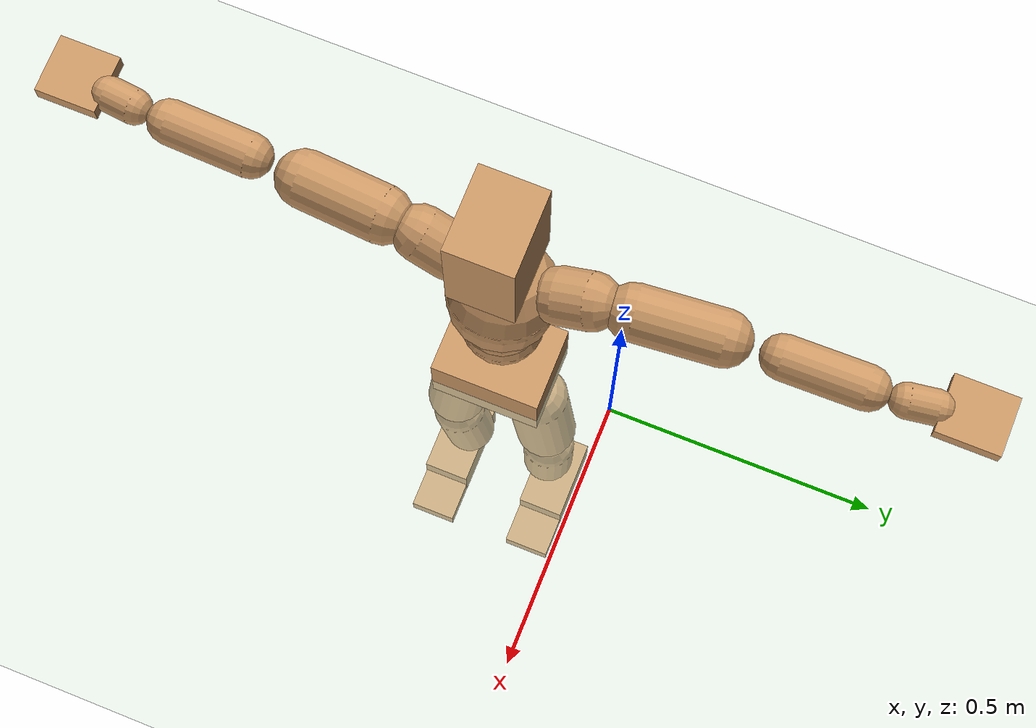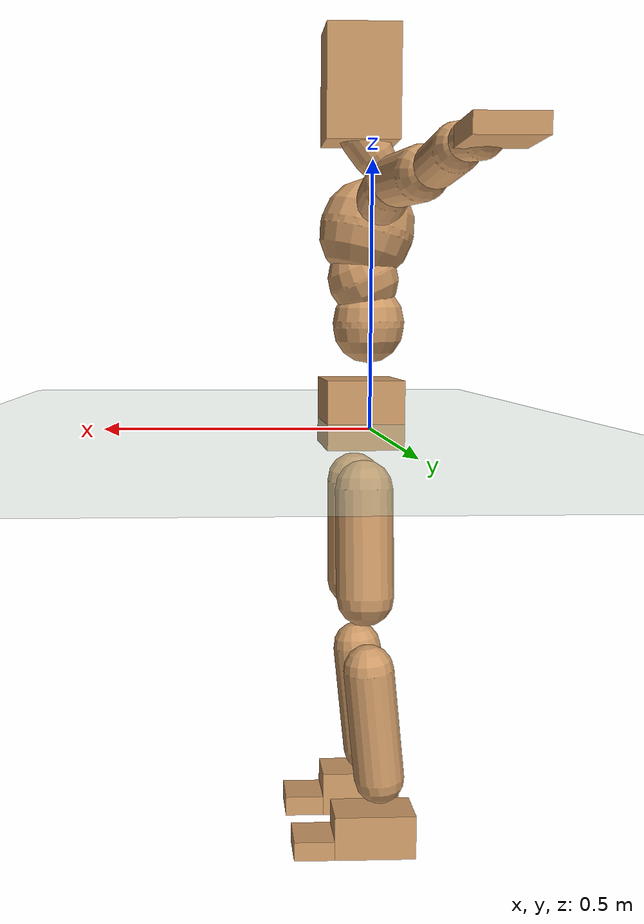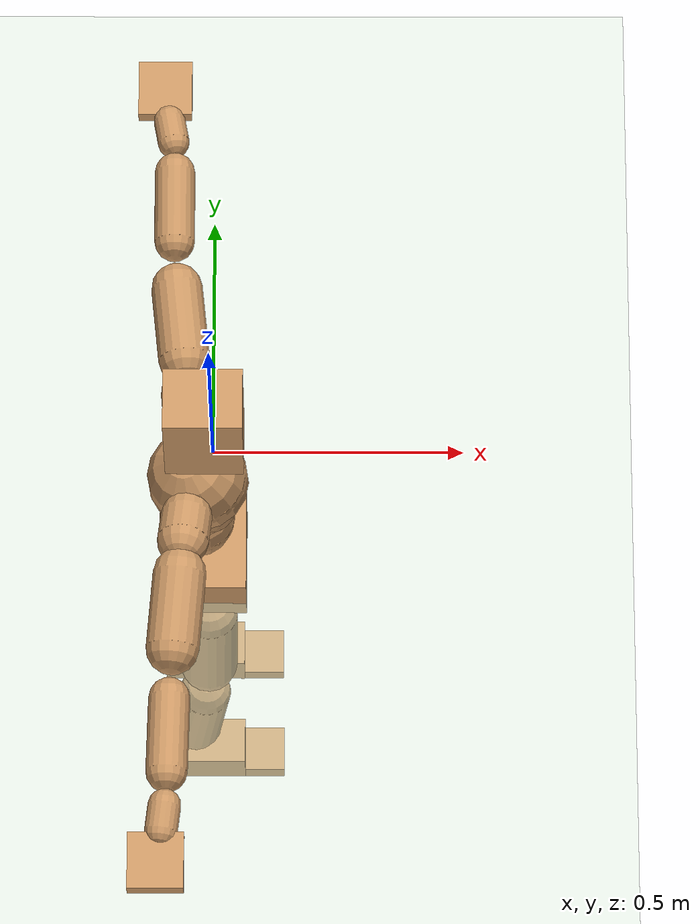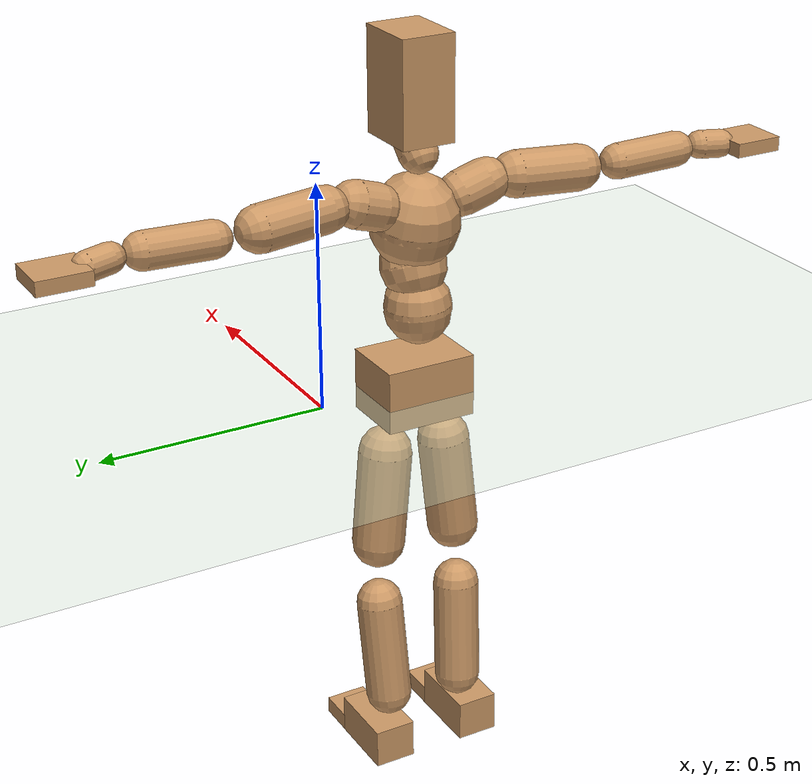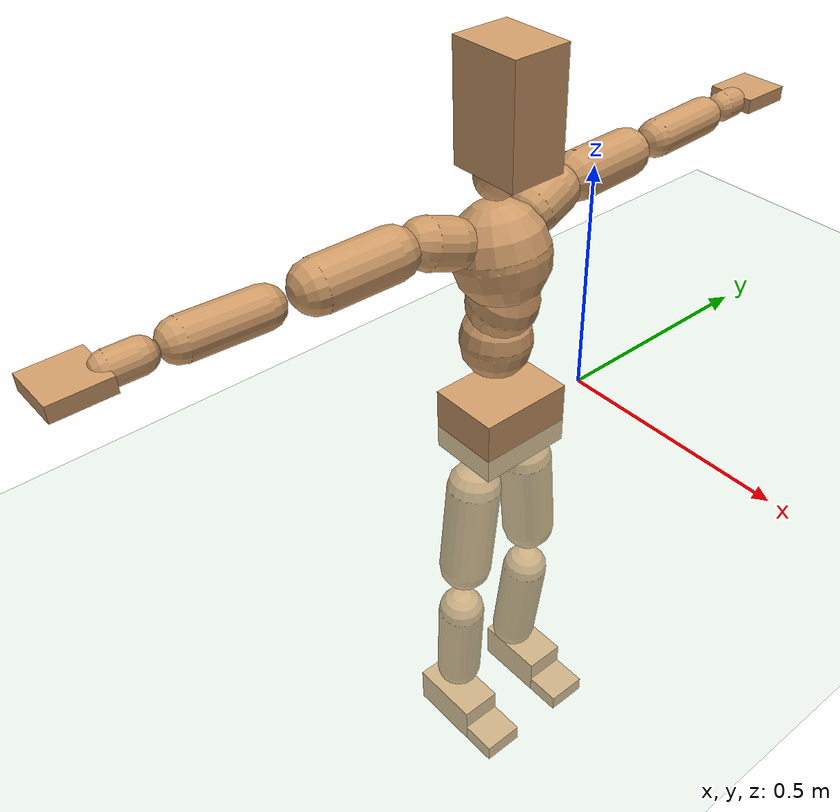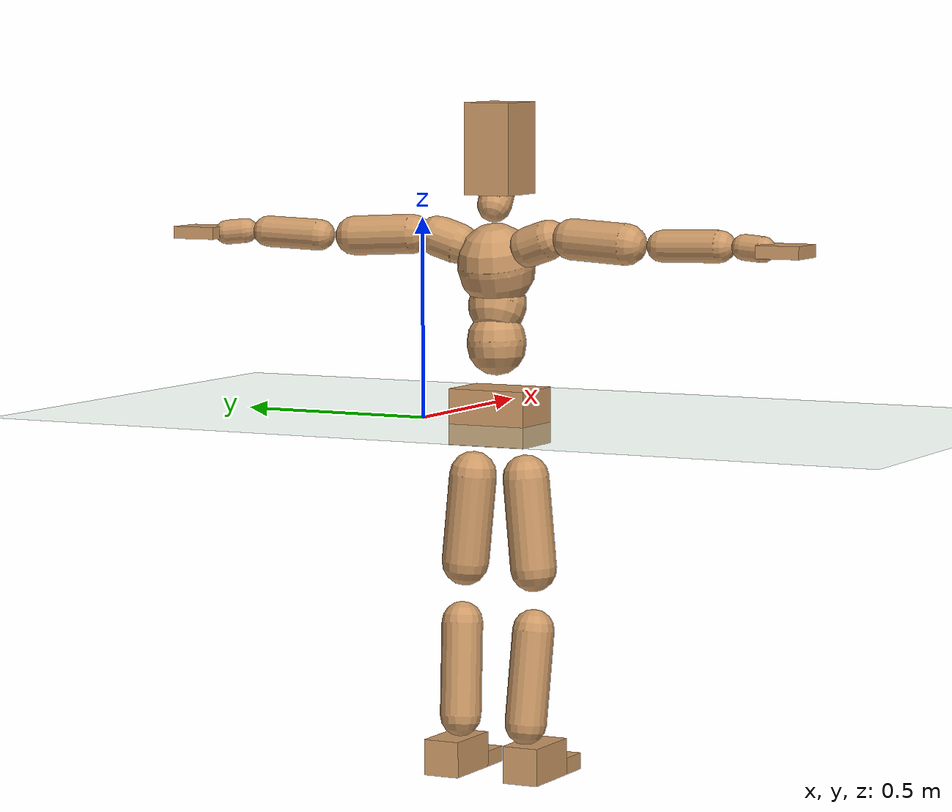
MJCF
<mujoco model="humanoid">
  <compiler coordinate="local" />
  <default>
    <joint damping="0.0" armature="0.01" stiffness="0.0" limited="true" />
    <geom conaffinity="1" condim="3" contype="7" margin="0.001" rgba="0.8 0.6 .4 1" />
  </default>
  <asset>
    <texture type="skybox" builtin="gradient" rgb1=".4 .5 .6" rgb2="0 0 0" width="100" height="100" />
    <texture builtin="flat" height="1278" mark="cross" markrgb="1 1 1" name="texgeom" random="0.01" rgb1="0.8 0.6 0.4" rgb2="0.8 0.6 0.4" type="cube" width="127" />
    <texture builtin="checker" height="100" name="texplane" rgb1="0 0 0" rgb2="0.8 0.8 0.8" type="2d" width="100" />
    <material name="MatPlane" reflectance="0.5" shininess="1" specular="1" texrepeat="60 60" texture="texplane" />
    <material name="geom" texture="texgeom" texuniform="true" />
  </asset>
  <worldbody>
    <light cutoff="100" diffuse="1 1 1" dir="-0 0 -1.3" directional="true" exponent="1" pos="0 0 1.3" specular=".1 .1 .1" />
    <geom conaffinity="1" condim="3" name="floor" pos="0 0 0" rgba="0.8 0.9 0.8 1" size="100 100 .2" type="plane" material="MatPlane" />
    <body name="Pelvis" pos="-0.0021 -0.2184 0.026">
      <freejoint name="Pelvis" />
      <geom type="box" pos="-0.0067 0.0001 -0.0108" size="0.0775 0.1028 0.0697" quat="1.0000 0.0000 0.0000 0.0000" density="1000" />
      <body name="L_Hip" pos="-0.0071 0.0667 -0.088">
        <joint name="L_Hip_x" type="hinge" pos="0 0 0" axis="1 0 0" stiffness="800" damping="80" armature="0.02" range="-180.0000 180.0000" />
        <joint name="L_Hip_y" type="hinge" pos="0 0 0" axis="0 1 0" stiffness="800" damping="80" armature="0.02" range="-180.0000 180.0000" />
        <joint name="L_Hip_z" type="hinge" pos="0 0 0" axis="0 0 1" stiffness="800" damping="80" armature="0.02" range="-180.0000 180.0000" />
        <geom type="capsule" contype="1" conaffinity="1" density="2040.816327" fromto="-0.0005 0.0069 -0.0734 -0.0018 0.0277 -0.2937" size="0.059" />
        <body name="L_Knee" pos="-0.0023 0.0346 -0.3672">
          <joint name="L_Knee_x" type="hinge" pos="0 0 0" axis="1 0 0" stiffness="800" damping="80" armature="0.02" range="-180.0000 180.0000" />
          <joint name="L_Knee_y" type="hinge" pos="0 0 0" axis="0 1 0" stiffness="800" damping="80" armature="0.02" range="-180.0000 180.0000" />
          <joint name="L_Knee_z" type="hinge" pos="0 0 0" axis="0 0 1" stiffness="800" damping="80" armature="0.02" range="-180.0000 180.0000" />
          <geom type="capsule" contype="1" conaffinity="1" density="1234.567901" fromto="-0.0083 -0.0026 -0.0774 -0.0331 -0.0105 -0.3095" size="0.052" />
          <body name="L_Ankle" pos="-0.0414 -0.0131 -0.3869">
            <joint name="L_Ankle_x" type="hinge" pos="0 0 0" axis="1 0 0" stiffness="800" damping="80" armature="0.02" range="-180.0000 180.0000" />
            <joint name="L_Ankle_y" type="hinge" pos="0 0 0" axis="0 1 0" stiffness="800" damping="80" armature="0.02" range="-180.0000 180.0000" />
            <joint name="L_Ankle_z" type="hinge" pos="0 0 0" axis="0 0 1" stiffness="800" damping="80" armature="0.02" range="-180.0000 180.0000" />
            <geom type="box" pos="0.0240 0.0231 -0.0234" size="0.0827 0.047 0.045" quat="1.0000 0.0000 0.0000 0.0000" density="1000" />
            <body name="L_Toe" pos="0.1165 0.0259 -0.0544">
              <joint name="L_Toe_x" type="hinge" pos="0 0 0" axis="1 0 0" stiffness="500" damping="50" armature="0.02" range="-180.0000 180.0000" />
              <joint name="L_Toe_y" type="hinge" pos="0 0 0" axis="0 1 0" stiffness="500" damping="50" armature="0.02" range="-180.0000 180.0000" />
              <joint name="L_Toe_z" type="hinge" pos="0 0 0" axis="0 0 1" stiffness="500" damping="50" armature="0.02" range="-180.0000 180.0000" />
              <geom type="box" pos="0.0243 -0.0028 0.0056" size="0.0482 0.0466 0.0196" quat="1.0000 0.0000 0.0000 0.0000" density="1000" />
            </body>
          </body>
        </body>
      </body>
      <body name="R_Hip" pos="-0.0049 -0.0649 -0.0871">
        <joint name="R_Hip_x" type="hinge" pos="0 0 0" axis="1 0 0" stiffness="800" damping="80" armature="0.02" range="-180.0000 180.0000" />
        <joint name="R_Hip_y" type="hinge" pos="0 0 0" axis="0 1 0" stiffness="800" damping="80" armature="0.02" range="-180.0000 180.0000" />
        <joint name="R_Hip_z" type="hinge" pos="0 0 0" axis="0 0 1" stiffness="800" damping="80" armature="0.02" range="-180.0000 180.0000" />
        <geom type="capsule" contype="1" conaffinity="1" density="2040.816327" fromto="-0.0013 -0.0076 -0.0748 -0.0052 -0.0306 -0.2992" size="0.058" />
        <body name="R_Knee" pos="-0.0065 -0.0382 -0.374">
          <joint name="R_Knee_x" type="hinge" pos="0 0 0" axis="1 0 0" stiffness="800" damping="80" armature="0.02" range="-180.0000 180.0000" />
          <joint name="R_Knee_y" type="hinge" pos="0 0 0" axis="0 1 0" stiffness="800" damping="80" armature="0.02" range="-180.0000 180.0000" />
          <joint name="R_Knee_z" type="hinge" pos="0 0 0" axis="0 0 1" stiffness="800" damping="80" armature="0.02" range="-180.0000 180.0000" />
          <geom type="capsule" contype="1" conaffinity="1" density="1234.567901" fromto="-0.0080 0.0031 -0.0774 -0.0319 0.0122 -0.3097" size="0.0522" />
          <body name="R_Ankle" pos="-0.0398 0.0153 -0.3871">
            <joint name="R_Ankle_x" type="hinge" pos="0 0 0" axis="1 0 0" stiffness="800" damping="80" armature="0.02" range="-180.0000 180.0000" />
            <joint name="R_Ankle_y" type="hinge" pos="0 0 0" axis="0 1 0" stiffness="800" damping="80" armature="0.02" range="-180.0000 180.0000" />
            <joint name="R_Ankle_z" type="hinge" pos="0 0 0" axis="0 0 1" stiffness="800" damping="80" armature="0.02" range="-180.0000 180.0000" />
            <geom type="box" pos="0.0253 -0.0195 -0.0171" size="0.0842 0.047 0.0465" quat="1.0000 0.0000 0.0000 0.0000" density="1000" />
            <body name="R_Toe" pos="0.1202 -0.0234 -0.0471">
              <joint name="R_Toe_x" type="hinge" pos="0 0 0" axis="1 0 0" stiffness="500" damping="50" armature="0.02" range="-180.0000 180.0000" />
              <joint name="R_Toe_y" type="hinge" pos="0 0 0" axis="0 1 0" stiffness="500" damping="50" armature="0.02" range="-180.0000 180.0000" />
              <joint name="R_Toe_z" type="hinge" pos="0 0 0" axis="0 0 1" stiffness="500" damping="50" armature="0.02" range="-180.0000 180.0000" />
              <geom type="box" pos="0.0228 0.0039 0.0044" size="0.0484 0.0466 0.0209" quat="1.0000 0.0000 0.0000 0.0000" density="1000" />
            </body>
          </body>
        </body>
      </body>
      <body name="Torso" pos="-0.0245 -0.0025 0.105">
        <joint name="Torso_x" type="hinge" pos="0 0 0" axis="1 0 0" stiffness="1000" damping="100" armature="0.02" range="-180.0000 180.0000" />
        <joint name="Torso_y" type="hinge" pos="0 0 0" axis="0 1 0" stiffness="1000" damping="100" armature="0.02" range="-180.0000 180.0000" />
        <joint name="Torso_z" type="hinge" pos="0 0 0" axis="0 0 1" stiffness="1000" damping="100" armature="0.02" range="-180.0000 180.0000" />
        <geom type="capsule" contype="1" conaffinity="1" density="2040.816327" fromto="0.0008 0.0025 0.0598 0.0010 0.0030 0.0731" size="0.0734" />
        <body name="Spine" pos="0.0017 0.0055 0.1328">
          <joint name="Spine_x" type="hinge" pos="0 0 0" axis="1 0 0" stiffness="1000" damping="100" armature="0.02" range="-180.0000 180.0000" />
          <joint name="Spine_y" type="hinge" pos="0 0 0" axis="0 1 0" stiffness="1000" damping="100" armature="0.02" range="-180.0000 180.0000" />
          <joint name="Spine_z" type="hinge" pos="0 0 0" axis="0 0 1" stiffness="1000" damping="100" armature="0.02" range="-180.0000 180.0000" />
          <geom type="capsule" contype="1" conaffinity="1" density="2040.816327" fromto="0.0104 0.0007 0.0232 0.0127 0.0009 0.0284" size="0.0723" />
          <body name="Chest" pos="0.0231 0.0016 0.0516">
            <joint name="Chest_x" type="hinge" pos="0 0 0" axis="1 0 0" stiffness="1000" damping="100" armature="0.02" range="-180.0000 180.0000" />
            <joint name="Chest_y" type="hinge" pos="0 0 0" axis="0 1 0" stiffness="1000" damping="100" armature="0.02" range="-180.0000 180.0000" />
            <joint name="Chest_z" type="hinge" pos="0 0 0" axis="0 0 1" stiffness="1000" damping="100" armature="0.02" range="-180.0000 180.0000" />
            <geom type="capsule" contype="1" conaffinity="1" density="2040.816327" fromto="-0.0166 -0.0010 0.0666 -0.0203 -0.0012 0.0814" size="0.0967" />
            <body name="Neck" pos="-0.0415 -0.0034 0.2093">
              <joint name="Neck_x" type="hinge" pos="0 0 0" axis="1 0 0" stiffness="500" damping="50" armature="0.02" range="-180.0000 180.0000" />
              <joint name="Neck_y" type="hinge" pos="0 0 0" axis="0 1 0" stiffness="500" damping="50" armature="0.02" range="-180.0000 180.0000" />
              <joint name="Neck_z" type="hinge" pos="0 0 0" axis="0 0 1" stiffness="500" damping="50" armature="0.02" range="-180.0000 180.0000" />
              <geom type="capsule" contype="1" conaffinity="1" density="1000" fromto="0.0100 0.0011 0.0130 0.0401 0.0044 0.0519" size="0.0427" />
              <body name="Head" pos="0.0501 0.0055 0.0649">
                <joint name="Head_x" type="hinge" pos="0 0 0" axis="1 0 0" stiffness="500" damping="50" armature="0.02" range="-180.0000 180.0000" />
                <joint name="Head_y" type="hinge" pos="0 0 0" axis="0 1 0" stiffness="500" damping="50" armature="0.02" range="-180.0000 180.0000" />
                <joint name="Head_z" type="hinge" pos="0 0 0" axis="0 0 1" stiffness="500" damping="50" armature="0.02" range="-180.0000 180.0000" />
                <geom type="box" pos="-0.0110 -0.0042 0.0863" size="0.0746 0.0595 0.1133" quat="1.0000 0.0000 0.0000 0.0000" density="1000" />

              </body>
            </body>
            <body name="L_Thorax" pos="-0.0325 0.0773 0.1187">
              <joint name="L_Thorax_x" type="hinge" pos="0 0 0" axis="1 0 0" stiffness="500" damping="50" armature="0.02" range="-180.0000 180.0000" />
              <joint name="L_Thorax_y" type="hinge" pos="0 0 0" axis="0 1 0" stiffness="500" damping="50" armature="0.02" range="-180.0000 180.0000" />
              <joint name="L_Thorax_z" type="hinge" pos="0 0 0" axis="0 0 1" stiffness="500" damping="50" armature="0.02" range="-180.0000 180.0000" />
              <geom type="capsule" contype="1" conaffinity="1" density="1000" fromto="-0.0016 0.0181 0.0060 -0.0066 0.0724 0.0240" size="0.0506" />
              <body name="L_Shoulder" pos="-0.0082 0.0905 0.0299">
                <joint name="L_Shoulder_x" type="hinge" pos="0 0 0" axis="1 0 0" stiffness="500" damping="50" armature="0.02" range="-720.0000 720.0000" />
                <joint name="L_Shoulder_y" type="hinge" pos="0 0 0" axis="0 1 0" stiffness="500" damping="50" armature="0.02" range="-720.0000 720.0000" />
                <joint name="L_Shoulder_z" type="hinge" pos="0 0 0" axis="0 0 1" stiffness="500" damping="50" armature="0.02" range="-720.0000 720.0000" />
                <geom type="capsule" contype="1" conaffinity="1" density="1000" fromto="-0.0052 0.0507 -0.0024 -0.0207 0.2027 -0.0098" size="0.0497" />
                <body name="L_Elbow" pos="-0.0259 0.2534 -0.0122">
                  <joint name="L_Elbow_x" type="hinge" pos="0 0 0" axis="1 0 0" stiffness="500" damping="50" armature="0.02" range="-720.0000 720.0000" />
                  <joint name="L_Elbow_y" type="hinge" pos="0 0 0" axis="0 1 0" stiffness="500" damping="50" armature="0.02" range="-720.0000 720.0000" />
                  <joint name="L_Elbow_z" type="hinge" pos="0 0 0" axis="0 0 1" stiffness="500" damping="50" armature="0.02" range="-720.0000 720.0000" />
                  <geom type="capsule" contype="1" conaffinity="1" density="1000" fromto="-0.0003 0.0486 0.0017 -0.0012 0.1944 0.0067" size="0.0392" />
                  <body name="L_Wrist" pos="-0.0015 0.243 0.0084">
                    <joint name="L_Wrist_x" type="hinge" pos="0 0 0" axis="1 0 0" stiffness="300" damping="30" armature="0.02" range="-180.0000 180.0000" />
                    <joint name="L_Wrist_y" type="hinge" pos="0 0 0" axis="0 1 0" stiffness="300" damping="30" armature="0.02" range="-180.0000 180.0000" />
                    <joint name="L_Wrist_z" type="hinge" pos="0 0 0" axis="0 0 1" stiffness="300" damping="30" armature="0.02" range="-180.0000 180.0000" />
                    <geom type="capsule" contype="1" conaffinity="1" density="1000" fromto="-0.0029 0.0163 -0.0016 -0.0116 0.0654 -0.0064" size="0.0309" />
                    <body name="L_Hand" pos="-0.0145 0.0817 -0.008">
                      <joint name="L_Hand_x" type="hinge" pos="0 0 0" axis="1 0 0" stiffness="300" damping="30" armature="0.02" range="-180.0000 180.0000" />
                      <joint name="L_Hand_y" type="hinge" pos="0 0 0" axis="0 1 0" stiffness="300" damping="30" armature="0.02" range="-180.0000 180.0000" />
                      <joint name="L_Hand_z" type="hinge" pos="0 0 0" axis="0 0 1" stiffness="300" damping="30" armature="0.02" range="-180.0000 180.0000" />
                      <geom type="box" pos="-0.0056 0.0480 0.0010" size="0.0523 0.0569 0.0154" quat="1.0000 0.0000 0.0000 0.0000" density="1000" />
                    </body>
                  </body>
                </body>
              </body>
            </body>
            <body name="R_Thorax" pos="-0.037 -0.0805 0.1158">
              <joint name="R_Thorax_x" type="hinge" pos="0 0 0" axis="1 0 0" stiffness="500" damping="50" armature="0.02" range="-180.0000 180.0000" />
              <joint name="R_Thorax_y" type="hinge" pos="0 0 0" axis="0 1 0" stiffness="500" damping="50" armature="0.02" range="-180.0000 180.0000" />
              <joint name="R_Thorax_z" type="hinge" pos="0 0 0" axis="0 0 1" stiffness="500" damping="50" armature="0.02" range="-180.0000 180.0000" />
              <geom type="capsule" contype="1" conaffinity="1" density="1000" fromto="-0.0018 -0.0190 0.0064 -0.0073 -0.0759 0.0258" size="0.0496" />
              <body name="R_Shoulder" pos="-0.0091 -0.0949 0.0322">
                <joint name="R_Shoulder_x" type="hinge" pos="0 0 0" axis="1 0 0" stiffness="500" damping="50" armature="0.02" range="-720.0000 720.0000" />
                <joint name="R_Shoulder_y" type="hinge" pos="0 0 0" axis="0 1 0" stiffness="500" damping="50" armature="0.02" range="-720.0000 720.0000" />
                <joint name="R_Shoulder_z" type="hinge" pos="0 0 0" axis="0 0 1" stiffness="500" damping="50" armature="0.02" range="-720.0000 720.0000" />
                <geom type="capsule" contype="1" conaffinity="1" density="1000" fromto="-0.0039 -0.0494 -0.0026 -0.0157 -0.1975 -0.0102" size="0.0511" />
                <body name="R_Elbow" pos="-0.0197 -0.2469 -0.0128">
                  <joint name="R_Elbow_x" type="hinge" pos="0 0 0" axis="1 0 0" stiffness="500" damping="50" armature="0.02" range="-720.0000 720.0000" />
                  <joint name="R_Elbow_y" type="hinge" pos="0 0 0" axis="0 1 0" stiffness="500" damping="50" armature="0.02" range="-720.0000 720.0000" />
                  <joint name="R_Elbow_z" type="hinge" pos="0 0 0" axis="0 0 1" stiffness="500" damping="50" armature="0.02" range="-720.0000 720.0000" />
                  <geom type="capsule" contype="1" conaffinity="1" density="1000" fromto="-0.0011 -0.0497 0.0014 -0.0045 -0.1987 0.0055" size="0.0394" />
                  <body name="R_Wrist" pos="-0.0057 -0.2483 0.0068">
                    <joint name="R_Wrist_x" type="hinge" pos="0 0 0" axis="1 0 0" stiffness="300" damping="30" armature="0.02" range="-180.0000 180.0000" />
                    <joint name="R_Wrist_y" type="hinge" pos="0 0 0" axis="0 1 0" stiffness="300" damping="30" armature="0.02" range="-180.0000 180.0000" />
                    <joint name="R_Wrist_z" type="hinge" pos="0 0 0" axis="0 0 1" stiffness="300" damping="30" armature="0.02" range="-180.0000 180.0000" />
                    <geom type="capsule" contype="1" conaffinity="1" density="1000" fromto="-0.0020 -0.0164 -0.0012 -0.0079 -0.0656 -0.0048" size="0.0315" />
                    <body name="R_Hand" pos="-0.0099 -0.082 -0.0059">
                      <joint name="R_Hand_x" type="hinge" pos="0 0 0" axis="1 0 0" stiffness="300" damping="30" armature="0.02" range="-180.0000 180.0000" />
                      <joint name="R_Hand_y" type="hinge" pos="0 0 0" axis="0 1 0" stiffness="300" damping="30" armature="0.02" range="-180.0000 180.0000" />
                      <joint name="R_Hand_z" type="hinge" pos="0 0 0" axis="0 0 1" stiffness="300" damping="30" armature="0.02" range="-180.0000 180.0000" />
                      <geom type="box" pos="-0.0077 -0.0448 -0.0009" size="0.0529 0.0552 0.0158" quat="1.0000 0.0000 0.0000 0.0000" density="1000" />
                    </body>
                  </body>
                </body>
              </body>
            </body>
          </body>
        </body>
      </body>
    </body>
  </worldbody>
  <actuator>
    <motor name="L_Hip_x" joint="L_Hip_x" gear="500" />
    <motor name="L_Hip_y" joint="L_Hip_y" gear="500" />
    <motor name="L_Hip_z" joint="L_Hip_z" gear="500" />
    <motor name="L_Knee_x" joint="L_Knee_x" gear="500" />
    <motor name="L_Knee_y" joint="L_Knee_y" gear="500" />
    <motor name="L_Knee_z" joint="L_Knee_z" gear="500" />
    <motor name="L_Ankle_x" joint="L_Ankle_x" gear="500" />
    <motor name="L_Ankle_y" joint="L_Ankle_y" gear="500" />
    <motor name="L_Ankle_z" joint="L_Ankle_z" gear="500" />
    <motor name="L_Toe_x" joint="L_Toe_x" gear="500" />
    <motor name="L_Toe_y" joint="L_Toe_y" gear="500" />
    <motor name="L_Toe_z" joint="L_Toe_z" gear="500" />
    <motor name="R_Hip_x" joint="R_Hip_x" gear="500" />
    <motor name="R_Hip_y" joint="R_Hip_y" gear="500" />
    <motor name="R_Hip_z" joint="R_Hip_z" gear="500" />
    <motor name="R_Knee_x" joint="R_Knee_x" gear="500" />
    <motor name="R_Knee_y" joint="R_Knee_y" gear="500" />
    <motor name="R_Knee_z" joint="R_Knee_z" gear="500" />
    <motor name="R_Ankle_x" joint="R_Ankle_x" gear="500" />
    <motor name="R_Ankle_y" joint="R_Ankle_y" gear="500" />
    <motor name="R_Ankle_z" joint="R_Ankle_z" gear="500" />
    <motor name="R_Toe_x" joint="R_Toe_x" gear="500" />
    <motor name="R_Toe_y" joint="R_Toe_y" gear="500" />
    <motor name="R_Toe_z" joint="R_Toe_z" gear="500" />
    <motor name="Torso_x" joint="Torso_x" gear="500" />
    <motor name="Torso_y" joint="Torso_y" gear="500" />
    <motor name="Torso_z" joint="Torso_z" gear="500" />
    <motor name="Spine_x" joint="Spine_x" gear="500" />
    <motor name="Spine_y" joint="Spine_y" gear="500" />
    <motor name="Spine_z" joint="Spine_z" gear="500" />
    <motor name="Chest_x" joint="Chest_x" gear="500" />
    <motor name="Chest_y" joint="Chest_y" gear="500" />
    <motor name="Chest_z" joint="Chest_z" gear="500" />
    <motor name="Neck_x" joint="Neck_x" gear="500" />
    <motor name="Neck_y" joint="Neck_y" gear="500" />
    <motor name="Neck_z" joint="Neck_z" gear="500" />
    <motor name="Head_x" joint="Head_x" gear="500" />
    <motor name="Head_y" joint="Head_y" gear="500" />
    <motor name="Head_z" joint="Head_z" gear="500" />
    <motor name="L_Thorax_x" joint="L_Thorax_x" gear="500" />
    <motor name="L_Thorax_y" joint="L_Thorax_y" gear="500" />
    <motor name="L_Thorax_z" joint="L_Thorax_z" gear="500" />
    <motor name="L_Shoulder_x" joint="L_Shoulder_x" gear="500" />
    <motor name="L_Shoulder_y" joint="L_Shoulder_y" gear="500" />
    <motor name="L_Shoulder_z" joint="L_Shoulder_z" gear="500" />
    <motor name="L_Elbow_x" joint="L_Elbow_x" gear="500" />
    <motor name="L_Elbow_y" joint="L_Elbow_y" gear="500" />
    <motor name="L_Elbow_z" joint="L_Elbow_z" gear="500" />
    <motor name="L_Wrist_x" joint="L_Wrist_x" gear="500" />
    <motor name="L_Wrist_y" joint="L_Wrist_y" gear="500" />
    <motor name="L_Wrist_z" joint="L_Wrist_z" gear="500" />
    <motor name="L_Hand_x" joint="L_Hand_x" gear="500" />
    <motor name="L_Hand_y" joint="L_Hand_y" gear="500" />
    <motor name="L_Hand_z" joint="L_Hand_z" gear="500" />
    <motor name="R_Thorax_x" joint="R_Thorax_x" gear="500" />
    <motor name="R_Thorax_y" joint="R_Thorax_y" gear="500" />
    <motor name="R_Thorax_z" joint="R_Thorax_z" gear="500" />
    <motor name="R_Shoulder_x" joint="R_Shoulder_x" gear="500" />
    <motor name="R_Shoulder_y" joint="R_Shoulder_y" gear="500" />
    <motor name="R_Shoulder_z" joint="R_Shoulder_z" gear="500" />
    <motor name="R_Elbow_x" joint="R_Elbow_x" gear="500" />
    <motor name="R_Elbow_y" joint="R_Elbow_y" gear="500" />
    <motor name="R_Elbow_z" joint="R_Elbow_z" gear="500" />
    <motor name="R_Wrist_x" joint="R_Wrist_x" gear="500" />
    <motor name="R_Wrist_y" joint="R_Wrist_y" gear="500" />
    <motor name="R_Wrist_z" joint="R_Wrist_z" gear="500" />
    <motor name="R_Hand_x" joint="R_Hand_x" gear="500" />
    <motor name="R_Hand_y" joint="R_Hand_y" gear="500" />
    <motor name="R_Hand_z" joint="R_Hand_z" gear="500" />
  </actuator>
  <contact>
    <exclude body1="Torso" body2="Chest" />
    <exclude body1="Head" body2="Chest" />
    <exclude body1="R_Knee" body2="R_Toe" />
    <exclude body1="R_Knee" body2="L_Ankle" />
    <exclude body1="R_Knee" body2="L_Toe" />
    <exclude body1="L_Knee" body2="L_Toe" />
    <exclude body1="L_Knee" body2="R_Ankle" />
    <exclude body1="L_Knee" body2="R_Toe" />
    <exclude body1="L_Shoulder" body2="Chest" />
    <exclude body1="R_Shoulder" body2="Chest" />
  </contact>
  <sensor />
  <size njmax="700" nconmax="700" />
</mujoco>
